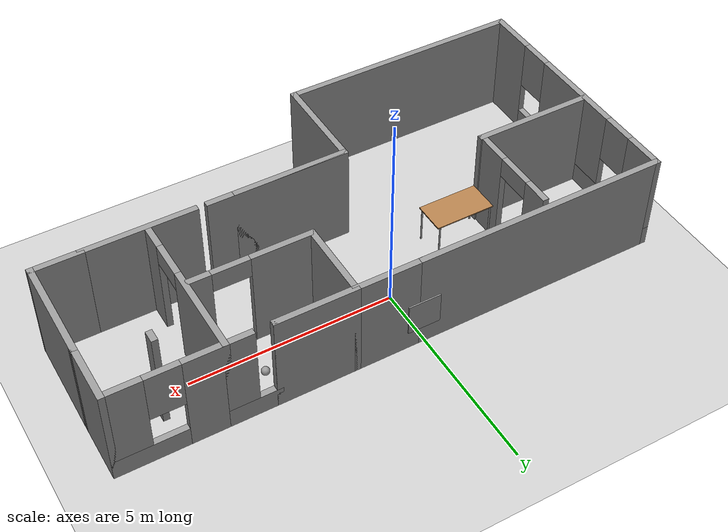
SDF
<sdf version="1.7">
 <world name="default">
  <plugin name="hello" filename="libhello.so"/>
  <light name="sun" type="directional">
   <pose>0 0 10 0 -0 0</pose>
   <diffuse>0.8 0.8 0.8 1</diffuse>
   <specular>0.2 0.2 0.2 1</specular>
   <attenuation>
    <range>1000</range>
    <constant>0.9</constant>
    <linear>0.01</linear>
    <quadratic>0.001</quadratic>
   </attenuation>
   <direction>-0.5 0.1 -0.9</direction>
   <spot><inner_angle>0</inner_angle><outer_angle>0</outer_angle><falloff>0</falloff></spot>
  </light>
  <model name="ground_plane">
   <static>1</static>
   <link name="link">
    <collision name="collision">
     <geometry><plane><normal>0 0 1</normal><size>100 100</size></plane></geometry>
     <surface>
      <contact><collide_bitmask>65535</collide_bitmask></contact>
      <friction><ode><mu>100</mu><mu2>50</mu2></ode></friction>
     </surface>
    </collision>
    <visual name="visual">
     <cast_shadows>0</cast_shadows>
     <geometry><plane><normal>0 0 1</normal><size>100 100</size></plane></geometry>
     <material>
      <script><uri>file://media/materials/scripts/gazebo.material</uri><name>Gazebo/Grey</name></script>
     </material>
    </visual>
   </link>
  </model>
  <gravity>0 0 -9.8</gravity>
  <magnetic_field>6e-06 2.3e-05 -4.2e-05</magnetic_field>
  <atmosphere type="adiabatic"/>
  <physics type="ode">
   <max_step_size>0.001</max_step_size>
   <real_time_factor>1</real_time_factor>
   <real_time_update_rate>1000</real_time_update_rate>
  </physics>
  <scene><ambient>0.4 0.4 0.4 1</ambient><background>0.7 0.7 0.7 1</background><shadows>1</shadows></scene>
  <spherical_coordinates>
   <surface_model>EARTH_WGS84</surface_model>
   <latitude_deg>0</latitude_deg>
   <longitude_deg>0</longitude_deg>
   <elevation>0</elevation>
   <heading_deg>0</heading_deg>
  </spherical_coordinates>
  <model name="My_apartment">
   <pose>0.60733 -1.66894 0 0 -0 0</pose>
   <link name="Wall_13">
    <collision name="Wall_13_Collision">
     <geometry><box><size>0.3 0.15 2.5</size></box></geometry>
     <pose>0 0 1.25 0 -0 0</pose>
    </collision>
    <visual name="Wall_13_Visual">
     <pose>0 0 1.25 0 -0 0</pose>
     <geometry><box><size>0.3 0.15 2.5</size></box></geometry>
     <material>
      <script><uri>file://media/materials/scripts/gazebo.material</uri><name>Gazebo/Grey</name></script>
      <ambient>0 0 0 1</ambient>
     </material>
     <meta><layer>0</layer></meta>
    </visual>
    <pose>5.17552 2.16029 0 0 -0 -1.5708</pose>
   </link>
   <link name="Wall_14">
    <pose>0.89982 -0.7 0 0 -0 3.14159</pose>
    <visual name="Wall_14_Visual_0">
     <pose>0 0 1.25 0 -0 0</pose>
     <geometry><box><size>3.5 0.15 2.5</size></box></geometry>
     <material>
      <script><uri>file://media/materials/scripts/gazebo.material</uri><name>Gazebo/Grey</name></script>
      <ambient>1 1 1 1</ambient>
     </material>
     <meta><layer>0</layer></meta>
    </visual>
    <collision name="Wall_14_Collision_0">
     <geometry><box><size>3.5 0.15 2.5</size></box></geometry>
     <pose>0 0 1.25 0 -0 0</pose>
    </collision>
    <visual name="Wall_14_Visual_1">
     <pose>0.330939 0 1.25 0 -0 0</pose>
     <geometry><box><size>2.83812 0.15 2.5</size></box></geometry>
     <material>
      <script><uri>file://media/materials/scripts/gazebo.material</uri><name>Gazebo/Grey</name></script>
      <ambient>1 1 1 1</ambient>
     </material>
     <meta><layer>0</layer></meta>
    </visual>
    <collision name="Wall_14_Collision_1">
     <geometry><box><size>2.83812 0.15 2.5</size></box></geometry>
     <pose>0.330939 0 1.25 0 -0 0</pose>
    </collision>
   </link>
   <link name="Wall_15">
    <collision name="Wall_15_Collision">
     <geometry><box><size>2.5 0.15 2.5</size></box></geometry>
     <pose>0 0 1.25 0 -0 0</pose>
    </collision>
    <visual name="Wall_15_Visual">
     <pose>0 0 1.25 0 -0 0</pose>
     <geometry><box><size>2.5 0.15 2.5</size></box></geometry>
     <material>
      <script><uri>file://media/materials/scripts/gazebo.material</uri><name>Gazebo/Grey</name></script>
      <ambient>1 1 1 1</ambient>
     </material>
     <meta><layer>0</layer></meta>
    </visual>
    <pose>-0.77518 -1.875 0 0 -0 -1.5708</pose>
   </link>
   <link name="Wall_16">
    <collision name="Wall_16_Collision">
     <geometry><box><size>5.98489 0.15 2.5</size></box></geometry>
     <pose>0 0 1.25 0 -0 0</pose>
    </collision>
    <visual name="Wall_16_Visual">
     <pose>0 0 1.25 0 -0 0</pose>
     <geometry><box><size>5.98489 0.15 2.5</size></box></geometry>
     <material>
      <script><uri>file://media/materials/scripts/gazebo.material</uri><name>Gazebo/Grey</name></script>
      <ambient>1 1 1 1</ambient>
     </material>
     <meta><layer>0</layer></meta>
    </visual>
    <pose>-3.69263 -3.05 0 0 -0 3.14159</pose>
   </link>
   <link name="Wall_17">
    <pose>-6.62528 -0 0 0 -0 1.5708</pose>
    <visual name="Wall_17_Visual_0">
     <pose>-2.50793 0 1.25 0 -0 0</pose>
     <geometry><box><size>1.23415 0.15 2.5</size></box></geometry>
     <material>
      <script><uri>file://media/materials/scripts/gazebo.material</uri><name>Gazebo/Grey</name></script>
      <ambient>1 1 1 1</ambient>
     </material>
     <meta><layer>0</layer></meta>
    </visual>
    <collision name="Wall_17_Collision_0">
     <geometry><box><size>1.23415 0.15 2.5</size></box></geometry>
     <pose>-2.50793 0 1.25 0 -0 0</pose>
    </collision>
    <visual name="Wall_17_Visual_1">
     <pose>0.617072 0 0.25 0 -0 0</pose>
     <geometry><box><size>5.01586 0.15 0.5</size></box></geometry>
     <material>
      <script><uri>file://media/materials/scripts/gazebo.material</uri><name>Gazebo/Grey</name></script>
      <ambient>1 1 1 1</ambient>
     </material>
     <meta><layer>0</layer></meta>
    </visual>
    <collision name="Wall_17_Collision_1">
     <geometry><box><size>5.01586 0.15 0.5</size></box></geometry>
     <pose>0.617072 0 0.25 0 -0 0</pose>
    </collision>
    <visual name="Wall_17_Visual_2">
     <pose>0.121272 0 1.5 0 -0 0</pose>
     <geometry><box><size>2.42426 0.15 2</size></box></geometry>
     <material>
      <script><uri>file://media/materials/scripts/gazebo.material</uri><name>Gazebo/Grey</name></script>
      <ambient>1 1 1 1</ambient>
     </material>
     <meta><layer>0</layer></meta>
    </visual>
    <collision name="Wall_17_Collision_2">
     <geometry><box><size>2.42426 0.15 2</size></box></geometry>
     <pose>0.121272 0 1.5 0 -0 0</pose>
    </collision>
    <visual name="Wall_17_Visual_3">
     <pose>2.6292 0 1.5 0 -0 0</pose>
     <geometry><box><size>0.9916 0.15 2</size></box></geometry>
     <material>
      <script><uri>file://media/materials/scripts/gazebo.material</uri><name>Gazebo/Grey</name></script>
      <ambient>1 1 1 1</ambient>
     </material>
     <meta><layer>0</layer></meta>
    </visual>
    <collision name="Wall_17_Collision_3">
     <geometry><box><size>0.9916 0.15 2</size></box></geometry>
     <pose>2.6292 0 1.5 0 -0 0</pose>
    </collision>
    <visual name="Wall_17_Visual_4">
     <pose>-1.49086 0 1.9 0 -0 0</pose>
     <geometry><box><size>0.8 0.15 1.2</size></box></geometry>
     <material>
      <script><uri>file://media/materials/scripts/gazebo.material</uri><name>Gazebo/Grey</name></script>
      <ambient>1 1 1 1</ambient>
     </material>
     <meta><layer>0</layer></meta>
    </visual>
    <collision name="Wall_17_Collision_4">
     <geometry><box><size>0.8 0.15 1.2</size></box></geometry>
     <pose>-1.49086 0 1.9 0 -0 0</pose>
    </collision>
    <visual name="Wall_17_Visual_5">
     <pose>1.7334 0 1.9 0 -0 0</pose>
     <geometry><box><size>0.8 0.15 1.2</size></box></geometry>
     <material>
      <script><uri>file://media/materials/scripts/gazebo.material</uri><name>Gazebo/Grey</name></script>
      <ambient>1 1 1 1</ambient>
     </material>
     <meta><layer>0</layer></meta>
    </visual>
    <collision name="Wall_17_Collision_5">
     <geometry><box><size>0.8 0.15 1.2</size></box></geometry>
     <pose>1.7334 0 1.9 0 -0 0</pose>
    </collision>
   </link>
   <link name="Wall_20">
    <collision name="Wall_20_Collision">
     <geometry><box><size>6.23489 0.15 2.5</size></box></geometry>
     <pose>0 0 1.25 0 -0 0</pose>
    </collision>
    <visual name="Wall_20_Visual">
     <pose>0 0 1.25 0 -0 0</pose>
     <geometry><box><size>6.23489 0.15 2.5</size></box></geometry>
     <material>
      <script><uri>file://media/materials/scripts/gazebo.material</uri><name>Gazebo/Grey</name></script>
      <ambient>1 1 1 1</ambient>
     </material>
     <meta><layer>0</layer></meta>
    </visual>
    <pose>-3.56763 3.05 0 0 -0 0</pose>
   </link>
   <link name="Wall_24">
    <collision name="Wall_24_Collision">
     <geometry><box><size>2 0.15 2.5</size></box></geometry>
     <pose>0 0 1.25 0 -0 0</pose>
    </collision>
    <visual name="Wall_24_Visual">
     <pose>0 0 1.25 0 -0 0</pose>
     <geometry><box><size>2 0.15 2.5</size></box></geometry>
     <material>
      <script><uri>file://media/materials/scripts/gazebo.material</uri><name>Gazebo/Grey</name></script>
      <ambient>1 1 1 1</ambient>
     </material>
     <meta><layer>0</layer></meta>
    </visual>
    <pose>1.99982 3.05 0 0 -0 0</pose>
   </link>
   <link name="Wall_28">
    <pose>5.32482 3.05 0 0 -0 0</pose>
    <visual name="Wall_28_Visual_0">
     <pose>-0.863295 0 1.25 0 -0 0</pose>
     <geometry><box><size>1.02341 0.15 2.5</size></box></geometry>
     <material>
      <script><uri>file://media/materials/scripts/gazebo.material</uri><name>Gazebo/Grey</name></script>
      <ambient>1 1 1 1</ambient>
     </material>
     <meta><layer>0</layer></meta>
    </visual>
    <collision name="Wall_28_Collision_0">
     <geometry><box><size>1.02341 0.15 2.5</size></box></geometry>
     <pose>-0.863295 0 1.25 0 -0 0</pose>
    </collision>
    <visual name="Wall_28_Visual_1">
     <pose>0.511705 0 0.25 0 -0 0</pose>
     <geometry><box><size>1.72659 0.15 0.5</size></box></geometry>
     <material>
      <script><uri>file://media/materials/scripts/gazebo.material</uri><name>Gazebo/Grey</name></script>
      <ambient>1 1 1 1</ambient>
     </material>
     <meta><layer>0</layer></meta>
    </visual>
    <collision name="Wall_28_Collision_1">
     <geometry><box><size>1.72659 0.15 0.5</size></box></geometry>
     <pose>0.511705 0 0.25 0 -0 0</pose>
    </collision>
    <visual name="Wall_28_Visual_2">
     <pose>0.911705 0 1.5 0 -0 0</pose>
     <geometry><box><size>0.92659 0.15 2</size></box></geometry>
     <material>
      <script><uri>file://media/materials/scripts/gazebo.material</uri><name>Gazebo/Grey</name></script>
      <ambient>1 1 1 1</ambient>
     </material>
     <meta><layer>0</layer></meta>
    </visual>
    <collision name="Wall_28_Collision_2">
     <geometry><box><size>0.92659 0.15 2</size></box></geometry>
     <pose>0.911705 0 1.5 0 -0 0</pose>
    </collision>
    <visual name="Wall_28_Visual_3">
     <pose>0.04841 0 1.9 0 -0 0</pose>
     <geometry><box><size>0.8 0.15 1.2</size></box></geometry>
     <material>
      <script><uri>file://media/materials/scripts/gazebo.material</uri><name>Gazebo/Grey</name></script>
      <ambient>1 1 1 1</ambient>
     </material>
     <meta><layer>0</layer></meta>
    </visual>
    <collision name="Wall_28_Collision_3">
     <geometry><box><size>0.8 0.15 1.2</size></box></geometry>
     <pose>0.04841 0 1.9 0 -0 0</pose>
    </collision>
   </link>
   <link name="Wall_29">
    <collision name="Wall_29_Collision">
     <geometry><box><size>1.5 0.15 2.5</size></box></geometry>
     <pose>0 0 1.25 0 -0 0</pose>
    </collision>
    <visual name="Wall_29_Visual">
     <pose>0 0 1.25 0 -0 0</pose>
     <geometry><box><size>1.5 0.15 2.5</size></box></geometry>
     <material>
      <script><uri>file://media/materials/scripts/gazebo.material</uri><name>Gazebo/Grey</name></script>
      <ambient>1 1 1 1</ambient>
     </material>
     <meta><layer>0</layer></meta>
    </visual>
    <pose>6.62482 2.375 0 0 -0 -1.5708</pose>
   </link>
   <link name="Wall_32">
    <collision name="Wall_32_Collision">
     <geometry><box><size>2.75 0.15 2.5</size></box></geometry>
     <pose>0 0 1.25 0 -0 0</pose>
    </collision>
    <visual name="Wall_32_Visual">
     <pose>0 0 1.25 0 -0 0</pose>
     <geometry><box><size>2.75 0.15 2.5</size></box></geometry>
     <material>
      <script><uri>file://media/materials/scripts/gazebo.material</uri><name>Gazebo/Grey</name></script>
      <ambient>1 1 1 1</ambient>
     </material>
     <meta><layer>0</layer></meta>
    </visual>
    <pose>4.21011 -0.7 0 0 -0 3.14159</pose>
   </link>
   <link name="Wall_34">
    <collision name="Wall_34_Collision">
     <geometry><box><size>1.25 0.15 2.5</size></box></geometry>
     <pose>0 0 1.25 0 -0 0</pose>
    </collision>
    <visual name="Wall_34_Visual">
     <pose>0 0 1.25 0 -0 0</pose>
     <geometry><box><size>1.25 0.15 2.5</size></box></geometry>
     <material>
      <script><uri>file://media/materials/scripts/gazebo.material</uri><name>Gazebo/Grey</name></script>
      <ambient>1 1 1 1</ambient>
     </material>
     <meta><layer>0</layer></meta>
    </visual>
    <pose>6.06011 -0.7 0 0 -0 0</pose>
   </link>
   <link name="Wall_35">
    <collision name="Wall_35_Collision">
     <geometry><box><size>2.55004 0.15 2.5</size></box></geometry>
     <pose>0 0 1.25 0 -0 0</pose>
    </collision>
    <visual name="Wall_35_Visual">
     <pose>0 0 1.25 0 -0 0</pose>
     <geometry><box><size>2.55004 0.15 2.5</size></box></geometry>
     <material>
      <script><uri>file://media/materials/scripts/gazebo.material</uri><name>Gazebo/Grey</name></script>
      <ambient>1 1 1 1</ambient>
     </material>
     <meta><layer>0</layer></meta>
    </visual>
    <pose>6.61747 0.5 0 0 -0 1.56467</pose>
   </link>
   <link name="Wall_39">
    <collision name="Wall_39_Collision">
     <geometry><box><size>0.15 0.15 2.5</size></box></geometry>
     <pose>0 0 1.25 0 -0 0</pose>
    </collision>
    <visual name="Wall_39_Visual">
     <pose>0 0 1.25 0 -0 0</pose>
     <geometry><box><size>0.15 0.15 2.5</size></box></geometry>
     <material>
      <script><uri>file://media/materials/scripts/gazebo.material</uri><name>Gazebo/Grey</name></script>
      <ambient>1 1 1 1</ambient>
     </material>
     <meta><layer>0</layer></meta>
    </visual>
    <pose>2.92482 3.05 0 0 -0 0</pose>
   </link>
   <link name="Wall_40">
    <pose>3.47482 3.05 0 0 -0 0</pose>
    <visual name="Wall_40_Visual_0">
     <pose>0 0 0.25 0 -0 0</pose>
     <geometry><box><size>1.25 0.15 0.5</size></box></geometry>
     <material>
      <script><uri>file://media/materials/scripts/gazebo.material</uri><name>Gazebo/Grey</name></script>
      <ambient>1 1 1 1</ambient>
     </material>
     <meta><layer>0</layer></meta>
    </visual>
    <collision name="Wall_40_Collision_0">
     <geometry><box><size>1.25 0.15 0.5</size></box></geometry>
     <pose>0 0 0.25 0 -0 0</pose>
    </collision>
    <visual name="Wall_40_Visual_1">
     <pose>0.267818 0 1.5 0 -0 0</pose>
     <geometry><box><size>0.714364 0.15 2</size></box></geometry>
     <material>
      <script><uri>file://media/materials/scripts/gazebo.material</uri><name>Gazebo/Grey</name></script>
      <ambient>1 1 1 1</ambient>
     </material>
     <meta><layer>0</layer></meta>
    </visual>
    <collision name="Wall_40_Collision_1">
     <geometry><box><size>0.714364 0.15 2</size></box></geometry>
     <pose>0.267818 0 1.5 0 -0 0</pose>
    </collision>
   </link>
   <link name="Wall_43">
    <collision name="Wall_43_Collision">
     <geometry><box><size>1.75 0.15 2.5</size></box></geometry>
     <pose>0 0 1.25 0 -0 0</pose>
    </collision>
    <visual name="Wall_43_Visual">
     <pose>0 0 1.25 0 -0 0</pose>
     <geometry><box><size>1.75 0.15 2.5</size></box></geometry>
     <material>
      <script><uri>file://media/materials/scripts/gazebo.material</uri><name>Gazebo/Grey</name></script>
      <ambient>1 1 1 1</ambient>
     </material>
     <meta><layer>0</layer></meta>
    </visual>
    <pose>0.27482 3.05 0 0 -0 0</pose>
   </link>
   <link name="Wall_46">
    <pose>4.02482 1.25 0 0 -0 -1.5708</pose>
    <visual name="Wall_46_Visual_0">
     <pose>-0.742619 0 1.25 0 -0 0</pose>
     <geometry><box><size>2.26476 0.15 2.5</size></box></geometry>
     <material>
      <script><uri>file://media/materials/scripts/gazebo.material</uri><name>Gazebo/Grey</name></script>
      <ambient>1 1 1 1</ambient>
     </material>
     <meta><layer>0</layer></meta>
    </visual>
    <collision name="Wall_46_Collision_0">
     <geometry><box><size>2.26476 0.15 2.5</size></box></geometry>
     <pose>-0.742619 0 1.25 0 -0 0</pose>
    </collision>
    <visual name="Wall_46_Visual_1">
     <pose>1.58238 0 1.25 0 -0 0</pose>
     <geometry><box><size>0.585239 0.15 2.5</size></box></geometry>
     <material>
      <script><uri>file://media/materials/scripts/gazebo.material</uri><name>Gazebo/Grey</name></script>
      <ambient>1 1 1 1</ambient>
     </material>
     <meta><layer>0</layer></meta>
    </visual>
    <collision name="Wall_46_Collision_1">
     <geometry><box><size>0.585239 0.15 2.5</size></box></geometry>
     <pose>1.58238 0 1.25 0 -0 0</pose>
    </collision>
    <visual name="Wall_46_Visual_2">
     <pose>0.839761 0 2.25 0 -0 0</pose>
     <geometry><box><size>0.9 0.15 0.5</size></box></geometry>
     <material>
      <script><uri>file://media/materials/scripts/gazebo.material</uri><name>Gazebo/Grey</name></script>
      <ambient>1 1 1 1</ambient>
     </material>
     <meta><layer>0</layer></meta>
    </visual>
    <collision name="Wall_46_Collision_2">
     <geometry><box><size>0.9 0.15 0.5</size></box></geometry>
     <pose>0.839761 0 2.25 0 -0 0</pose>
    </collision>
   </link>
   <link name="Wall_48">
    <collision name="Wall_48_Collision">
     <geometry><box><size>2 0.15 2.5</size></box></geometry>
     <pose>0 0 1.25 0 -0 0</pose>
    </collision>
    <visual name="Wall_48_Visual">
     <pose>0 0 1.25 0 -0 0</pose>
     <geometry><box><size>2 0.15 2.5</size></box></geometry>
     <material>
      <script><uri>file://media/materials/scripts/gazebo.material</uri><name>Gazebo/Grey</name></script>
      <ambient>1 1 1 1</ambient>
     </material>
     <meta><layer>0</layer></meta>
    </visual>
    <pose>1.07482 2.125 0 0 -0 -1.5708</pose>
   </link>
   <link name="Wall_49">
    <pose>2.49982 1.2 0 0 -0 0</pose>
    <visual name="Wall_49_Visual_0">
     <pose>-0.724578 0 1.25 0 -0 0</pose>
     <geometry><box><size>1.55085 0.15 2.5</size></box></geometry>
     <material>
      <script><uri>file://media/materials/scripts/gazebo.material</uri><name>Gazebo/Grey</name></script>
      <ambient>1 1 1 1</ambient>
     </material>
     <meta><layer>0</layer></meta>
    </visual>
    <collision name="Wall_49_Collision_0">
     <geometry><box><size>1.55085 0.15 2.5</size></box></geometry>
     <pose>-0.724578 0 1.25 0 -0 0</pose>
    </collision>
    <visual name="Wall_49_Visual_1">
     <pose>1.22542 0 1.25 0 -0 0</pose>
     <geometry><box><size>0.549155 0.15 2.5</size></box></geometry>
     <material>
      <script><uri>file://media/materials/scripts/gazebo.material</uri><name>Gazebo/Grey</name></script>
      <ambient>1 1 1 1</ambient>
     </material>
     <meta><layer>0</layer></meta>
    </visual>
    <collision name="Wall_49_Collision_1">
     <geometry><box><size>0.549155 0.15 2.5</size></box></geometry>
     <pose>1.22542 0 1.25 0 -0 0</pose>
    </collision>
    <visual name="Wall_49_Visual_2">
     <pose>0.500845 0 2.25 0 -0 0</pose>
     <geometry><box><size>0.9 0.15 0.5</size></box></geometry>
     <material>
      <script><uri>file://media/materials/scripts/gazebo.material</uri><name>Gazebo/Grey</name></script>
      <ambient>1 1 1 1</ambient>
     </material>
     <meta><layer>0</layer></meta>
    </visual>
    <collision name="Wall_49_Collision_2">
     <geometry><box><size>0.9 0.15 0.5</size></box></geometry>
     <pose>0.500845 0 2.25 0 -0 0</pose>
    </collision>
   </link>
   <link name="Wall_56">
    <pose>-3.76723 1.60114 0 0 -0 -1.5708</pose>
    <visual name="Wall_56_Visual_0">
     <pose>-0.915138 0 1.25 0 -0 0</pose>
     <geometry><box><size>0.669724 0.15 2.5</size></box></geometry>
     <material>
      <script><uri>file://media/materials/scripts/gazebo.material</uri><name>Gazebo/Grey</name></script>
      <ambient>1 1 1 1</ambient>
     </material>
     <meta><layer>0</layer></meta>
    </visual>
    <collision name="Wall_56_Collision_0">
     <geometry><box><size>0.669724 0.15 2.5</size></box></geometry>
     <pose>-0.915138 0 1.25 0 -0 0</pose>
    </collision>
    <visual name="Wall_56_Visual_1">
     <pose>0.784862 0 1.25 0 -0 0</pose>
     <geometry><box><size>0.930276 0.15 2.5</size></box></geometry>
     <material>
      <script><uri>file://media/materials/scripts/gazebo.material</uri><name>Gazebo/Grey</name></script>
      <ambient>1 1 1 1</ambient>
     </material>
     <meta><layer>0</layer></meta>
    </visual>
    <collision name="Wall_56_Collision_1">
     <geometry><box><size>0.930276 0.15 2.5</size></box></geometry>
     <pose>0.784862 0 1.25 0 -0 0</pose>
    </collision>
    <visual name="Wall_56_Visual_2">
     <pose>-0.130276 0 2.25 0 -0 0</pose>
     <geometry><box><size>0.9 0.15 0.5</size></box></geometry>
     <material>
      <script><uri>file://media/materials/scripts/gazebo.material</uri><name>Gazebo/Grey</name></script>
      <ambient>1 1 1 1</ambient>
     </material>
     <meta><layer>0</layer></meta>
    </visual>
    <collision name="Wall_56_Collision_2">
     <geometry><box><size>0.9 0.15 0.5</size></box></geometry>
     <pose>-0.130276 0 2.25 0 -0 0</pose>
    </collision>
   </link>
   <link name="Wall_58">
    <collision name="Wall_58_Collision">
     <geometry><box><size>3 0.15 2.5</size></box></geometry>
     <pose>0 0 1.25 0 -0 0</pose>
    </collision>
    <visual name="Wall_58_Visual">
     <pose>0 0 1.25 0 -0 0</pose>
     <geometry><box><size>3 0.15 2.5</size></box></geometry>
     <material>
      <script><uri>file://media/materials/scripts/gazebo.material</uri><name>Gazebo/Grey</name></script>
      <ambient>1 1 1 1</ambient>
     </material>
     <meta><layer>0</layer></meta>
    </visual>
    <pose>-5.16181 0.426144 0 0 -0 3.14159</pose>
   </link>
   <link name="Window_3">
    <collision name="Window_3_Collision">
     <geometry><box><size>0.8 0.17 0.8</size></box></geometry>
     <pose>0 0 0.4 0 -0 0</pose>
    </collision>
    <visual name="Window_3_Visual">
     <pose>0 0 0.4 0 -0 0</pose>
     <geometry><box><size>0.8 0.17 0.8</size></box></geometry>
     <material>
      <script><uri>file://media/materials/scripts/gazebo.material</uri><name>Gazebo/Grey</name></script>
     </material>
    </visual>
    <pose>-0.558182 3.07177 0.5 0 -0 0</pose>
   </link>
   <static>1</static>
  </model>
  <model name="table">
   <static>1</static>
   <link name="link">
    <collision name="surface">
     <pose>0 0 1 0 -0 0</pose>
     <geometry><box><size>1.5 0.8 0.03</size></box></geometry>
     <surface><friction><ode><mu>0.6</mu><mu2>0.6</mu2></ode></friction></surface>
    </collision>
    <visual name="visual1">
     <pose>0 0 1 0 -0 0</pose>
     <geometry><box><size>1.5 0.8 0.03</size></box></geometry>
     <material>
      <script><uri>file://media/materials/scripts/gazebo.material</uri><name>Gazebo/Wood</name></script>
     </material>
    </visual>
    <collision name="front_left_leg">
     <pose>0.68 0.38 0.5 0 -0 0</pose>
     <geometry><cylinder><radius>0.02</radius><length>1</length></cylinder></geometry>
    </collision>
    <visual name="front_left_leg">
     <pose>0.68 0.38 0.5 0 -0 0</pose>
     <geometry><cylinder><radius>0.02</radius><length>1</length></cylinder></geometry>
     <material>
      <script><uri>file://media/materials/scripts/gazebo.material</uri><name>Gazebo/Grey</name></script>
     </material>
    </visual>
    <collision name="front_right_leg">
     <pose>0.68 -0.38 0.5 0 -0 0</pose>
     <geometry><cylinder><radius>0.02</radius><length>1</length></cylinder></geometry>
    </collision>
    <visual name="front_right_leg">
     <pose>0.68 -0.38 0.5 0 -0 0</pose>
     <geometry><cylinder><radius>0.02</radius><length>1</length></cylinder></geometry>
     <material>
      <script><uri>file://media/materials/scripts/gazebo.material</uri><name>Gazebo/Grey</name></script>
     </material>
    </visual>
    <collision name="back_right_leg">
     <pose>-0.68 -0.38 0.5 0 -0 0</pose>
     <geometry><cylinder><radius>0.02</radius><length>1</length></cylinder></geometry>
    </collision>
    <visual name="back_right_leg">
     <pose>-0.68 -0.38 0.5 0 -0 0</pose>
     <geometry><cylinder><radius>0.02</radius><length>1</length></cylinder></geometry>
     <material>
      <script><uri>file://media/materials/scripts/gazebo.material</uri><name>Gazebo/Grey</name></script>
     </material>
    </visual>
    <collision name="back_left_leg">
     <pose>-0.68 0.38 0.5 0 -0 0</pose>
     <geometry><cylinder><radius>0.02</radius><length>1</length></cylinder></geometry>
    </collision>
    <visual name="back_left_leg">
     <pose>-0.68 0.38 0.5 0 -0 0</pose>
     <geometry><cylinder><radius>0.02</radius><length>1</length></cylinder></geometry>
     <material>
      <script><uri>file://media/materials/scripts/gazebo.material</uri><name>Gazebo/Grey</name></script>
     </material>
    </visual>
   </link>
   <pose>-2.28935 -0.887384 0 0 -0 0</pose>
  </model>
  <model name="table_clone">
   <static>1</static>
   <link name="link">
    <collision name="surface">
     <pose>0 0 1 0 -0 0</pose>
     <geometry><box><size>1.5 0.8 0.03</size></box></geometry>
     <surface><friction><ode><mu>0.6</mu><mu2>0.6</mu2></ode></friction></surface>
    </collision>
    <visual name="visual1">
     <pose>0 0 1 0 -0 0</pose>
     <geometry><box><size>1.5 0.8 0.03</size></box></geometry>
     <material>
      <script><uri>file://media/materials/scripts/gazebo.material</uri><name>Gazebo/Wood</name></script>
     </material>
    </visual>
    <collision name="front_left_leg">
     <pose>0.68 0.38 0.5 0 -0 0</pose>
     <geometry><cylinder><radius>0.02</radius><length>1</length></cylinder></geometry>
    </collision>
    <visual name="front_left_leg">
     <pose>0.68 0.38 0.5 0 -0 0</pose>
     <geometry><cylinder><radius>0.02</radius><length>1</length></cylinder></geometry>
     <material>
      <script><uri>file://media/materials/scripts/gazebo.material</uri><name>Gazebo/Grey</name></script>
     </material>
    </visual>
    <collision name="front_right_leg">
     <pose>0.68 -0.38 0.5 0 -0 0</pose>
     <geometry><cylinder><radius>0.02</radius><length>1</length></cylinder></geometry>
    </collision>
    <visual name="front_right_leg">
     <pose>0.68 -0.38 0.5 0 -0 0</pose>
     <geometry><cylinder><radius>0.02</radius><length>1</length></cylinder></geometry>
     <material>
      <script><uri>file://media/materials/scripts/gazebo.material</uri><name>Gazebo/Grey</name></script>
     </material>
    </visual>
    <collision name="back_right_leg">
     <pose>-0.68 -0.38 0.5 0 -0 0</pose>
     <geometry><cylinder><radius>0.02</radius><length>1</length></cylinder></geometry>
    </collision>
    <visual name="back_right_leg">
     <pose>-0.68 -0.38 0.5 0 -0 0</pose>
     <geometry><cylinder><radius>0.02</radius><length>1</length></cylinder></geometry>
     <material>
      <script><uri>file://media/materials/scripts/gazebo.material</uri><name>Gazebo/Grey</name></script>
     </material>
    </visual>
    <collision name="back_left_leg">
     <pose>-0.68 0.38 0.5 0 -0 0</pose>
     <geometry><cylinder><radius>0.02</radius><length>1</length></cylinder></geometry>
    </collision>
    <visual name="back_left_leg">
     <pose>-0.68 0.38 0.5 0 -0 0</pose>
     <geometry><cylinder><radius>0.02</radius><length>1</length></cylinder></geometry>
     <material>
      <script><uri>file://media/materials/scripts/gazebo.material</uri><name>Gazebo/Grey</name></script>
     </material>
    </visual>
   </link>
   <pose>-4.23807 0.85827 0 0 -0 0</pose>
  </model>
  <model name="cabinet">
   <static>1</static>
   <link name="cabinet_bottom_plate">
    <inertial>
     <pose>0 0 -1 0 -0 0</pose>
     <inertia><ixx>2.05</ixx><ixy>0</ixy><ixz>0</ixz><iyy>2.05</iyy><iyz>0</iyz><izz>2.05</izz></inertia>
     <mass>25</mass>
    </inertial>
    <collision name="cabinet_bottom_plate_geom">
     <pose>0 0 0.01 0 -0 0</pose>
     <geometry><box><size>0.45 0.45 0.02</size></box></geometry>
    </collision>
    <visual name="cabinet_bottom_plate_geom_visual">
     <pose>0 0 0.01 0 -0 0</pose>
     <geometry><box><size>0.45 0.45 0.02</size></box></geometry>
     <material>
      <script><uri>file://media/materials/scripts/gazebo.material</uri><name>Gazebo/Wood</name></script>
     </material>
    </visual>
    <collision name="cabinet_bottom_plate_geom_cabinet_back_plate">
     <pose>0.235 0 0.51 0 -0 0</pose>
     <geometry><box><size>0.02 0.45 1.02</size></box></geometry>
    </collision>
    <visual name="cabinet_bottom_plate_geom_cabinet_back_plate_visual">
     <pose>0.235 0 0.51 0 -0 0</pose>
     <geometry><box><size>0.02 0.45 1.02</size></box></geometry>
     <material>
      <script><uri>file://media/materials/scripts/gazebo.material</uri><name>Gazebo/Wood</name></script>
     </material>
    </visual>
    <collision name="cabinet_bottom_plate_geom_cabinet_left_plate">
     <pose>0 0.235 0.51 0 -0 0</pose>
     <geometry><box><size>0.45 0.02 1.02</size></box></geometry>
    </collision>
    <visual name="cabinet_bottom_plate_geom_cabinet_left_plate_visual">
     <pose>0 0.235 0.51 0 -0 0</pose>
     <geometry><box><size>0.45 0.02 1.02</size></box></geometry>
     <material>
      <script><uri>file://media/materials/scripts/gazebo.material</uri><name>Gazebo/Wood</name></script>
     </material>
    </visual>
    <collision name="cabinet_bottom_plate_geom_cabinet_middle_plate">
     <pose>0 0 0.51 0 -0 0</pose>
     <geometry><box><size>0.45 0.45 0.02</size></box></geometry>
    </collision>
    <visual name="cabinet_bottom_plate_geom_cabinet_middle_plate_visual">
     <pose>0 0 0.51 0 -0 0</pose>
     <geometry><box><size>0.45 0.45 0.02</size></box></geometry>
     <material>
      <script><uri>file://media/materials/scripts/gazebo.material</uri><name>Gazebo/Wood</name></script>
     </material>
    </visual>
    <collision name="cabinet_bottom_plate_geom_cabinet_right_plate">
     <pose>0 -0.235 0.51 0 -0 0</pose>
     <geometry><box><size>0.45 0.02 1.02</size></box></geometry>
    </collision>
    <visual name="cabinet_bottom_plate_geom_cabinet_right_plate_visual">
     <pose>0 -0.235 0.51 0 -0 0</pose>
     <geometry><box><size>0.45 0.02 1.02</size></box></geometry>
     <material>
      <script><uri>file://media/materials/scripts/gazebo.material</uri><name>Gazebo/Wood</name></script>
     </material>
    </visual>
    <collision name="cabinet_bottom_plate_geom_cabinet_top_plate">
     <pose>0 0 1.01 0 -0 0</pose>
     <geometry><box><size>0.45 0.45 0.02</size></box></geometry>
    </collision>
    <visual name="cabinet_bottom_plate_geom_cabinet_top_plate_visual">
     <pose>0 0 1.01 0 -0 0</pose>
     <geometry><box><size>0.45 0.45 0.02</size></box></geometry>
     <material>
      <script><uri>file://media/materials/scripts/gazebo.material</uri><name>Gazebo/Wood</name></script>
     </material>
    </visual>
   </link>
   <pose>-0.497746 -4.18946 0 0 -0 0</pose>
  </model>
  <model name="my_ball">
   <link name="link_0">
    <inertial>
     <mass>1</mass>
     <inertia><ixx>0.1</ixx><ixy>0</ixy><ixz>0</ixz><iyy>0.1</iyy><iyz>0</iyz><izz>0.1</izz></inertia>
    </inertial>
    <visual name="visual">
     <geometry><sphere><radius>0.1</radius></sphere></geometry>
     <material>
      <lighting>1</lighting>
      <script><uri>file://media/materials/scripts/gazebo.material</uri><name>Gazebo/Grey</name></script>
      <shader type="pixel"><normal_map>__default__</normal_map></shader>
      <ambient>1 1 1 1</ambient>
      <diffuse>1 1 1 1</diffuse>
      <specular>1 1 1 1</specular>
      <emissive>0 0 0 1</emissive>
     </material>
    </visual>
    <collision name="collision">
     <geometry><sphere><radius>0.1</radius></sphere></geometry>
     <surface>
      <friction>
       <ode><mu>1</mu><mu2>1</mu2><fdir1>0 0 0</fdir1><slip1>0</slip1><slip2>0</slip2></ode>
       <torsional>
        <coefficient>1</coefficient>
        <patch_radius>0</patch_radius>
        <surface_radius>0</surface_radius>
        <use_patch_radius>1</use_patch_radius>
        <ode><slip>0</slip></ode>
       </torsional>
      </friction>
      <bounce><restitution_coefficient>0</restitution_coefficient><threshold>1e+06</threshold></bounce>
      <contact>
       <collide_without_contact>0</collide_without_contact>
       <collide_without_contact_bitmask>1</collide_without_contact_bitmask>
       <collide_bitmask>1</collide_bitmask>
       <ode>
        <soft_cfm>0</soft_cfm>
        <soft_erp>0.2</soft_erp>
        <kp>1e+13</kp>
        <kd>1</kd>
        <max_vel>0.01</max_vel>
        <min_depth>0</min_depth>
       </ode>
       <bullet>
        <split_impulse>1</split_impulse>
        <split_impulse_penetration_threshold>-0.01</split_impulse_penetration_threshold>
        <soft_cfm>0</soft_cfm>
        <soft_erp>0.2</soft_erp>
        <kp>1e+13</kp>
        <kd>1</kd>
       </bullet>
      </contact>
     </surface>
    </collision>
   </link>
   <static>0</static>
   <pose>3.44289 0.565183 0.1 0 -0 0</pose>
  </model>
 </world>
</sdf>
